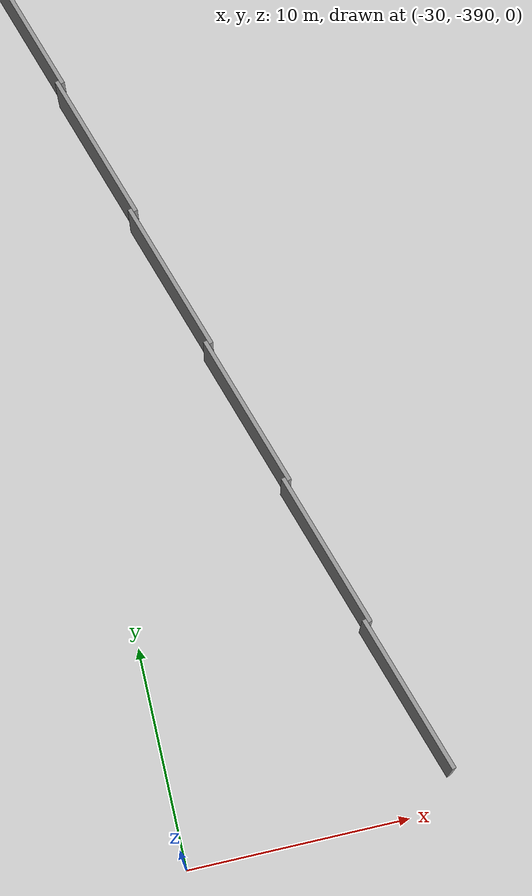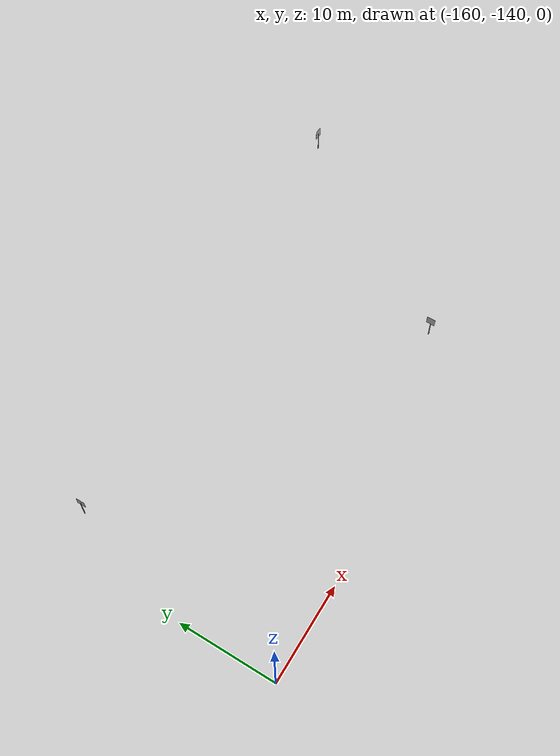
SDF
<sdf version="1.6">
 <world name="default">
  <light name="sun" type="directional">
   <pose>0 0 10 0 -0 0</pose>
   <diffuse>0.8 0.8 0.8 1</diffuse>
   <specular>0.2 0.2 0.2 1</specular>
   <attenuation>
    <range>1000</range>
    <constant>0.9</constant>
    <linear>0.01</linear>
    <quadratic>0.001</quadratic>
   </attenuation>
   <direction>-0.5 0.1 -0.9</direction>
  </light>
  <gravity>0 0 -9.8</gravity>
  <magnetic_field>6e-06 2.3e-05 -4.2e-05</magnetic_field>
  <atmosphere type="adiabatic"/>
  <physics name="default_physics" default="0" type="ode">
   <max_step_size>0.001</max_step_size>
   <real_time_factor>1</real_time_factor>
   <real_time_update_rate>1000</real_time_update_rate>
  </physics>
  <scene><ambient>0.4 0.4 0.4 1</ambient><background>0.7 0.7 0.7 1</background><shadows>1</shadows></scene>
  <audio><device>default</device></audio>
  <spherical_coordinates>
   <surface_model>EARTH_WGS84</surface_model>
   <latitude_deg>0</latitude_deg>
   <longitude_deg>0</longitude_deg>
   <elevation>0</elevation>
   <heading_deg>0</heading_deg>
  </spherical_coordinates>
  <model name="grey_wall">
   <static>1</static>
   <link name="link">
    <pose>0 0 1.4 0 -0 0</pose>
    <collision name="collision"><geometry><box><size>7.5 0.2 2.8</size></box></geometry></collision>
    <visual name="visual">
     <cast_shadows>0</cast_shadows>
     <geometry><box><size>7.5 0.2 2.8</size></box></geometry>
     <material>
      <script>
       <uri>model://grey_wall/materials/scripts</uri>
       <uri>model://grey_wall/materials/textures</uri>
       <name>vrc/grey_wall</name>
      </script>
     </material>
    </visual>
   </link>
   <pose>-29 -350 0 0 -0 1.87601</pose>
  </model>
  <model name="grey_wall_clone">
   <static>1</static>
   <link name="link">
    <pose>0 0 1.4 0 -0 0</pose>
    <collision name="collision"><geometry><box><size>7.5 0.2 2.8</size></box></geometry></collision>
    <visual name="visual">
     <cast_shadows>0</cast_shadows>
     <geometry><box><size>7.5 0.2 2.8</size></box></geometry>
     <material>
      <script>
       <uri>model://grey_wall/materials/scripts</uri>
       <uri>model://grey_wall/materials/textures</uri>
       <name>vrc/grey_wall</name>
      </script>
     </material>
    </visual>
   </link>
   <pose>-27 -357 0 0 -0 1.87601</pose>
  </model>
  <model name="grey_wall_clone_0">
   <static>1</static>
   <link name="link">
    <pose>0 0 1.4 0 -0 0</pose>
    <collision name="collision"><geometry><box><size>7.5 0.2 2.8</size></box></geometry></collision>
    <visual name="visual">
     <cast_shadows>0</cast_shadows>
     <geometry><box><size>7.5 0.2 2.8</size></box></geometry>
     <material>
      <script>
       <uri>model://grey_wall/materials/scripts</uri>
       <uri>model://grey_wall/materials/textures</uri>
       <name>vrc/grey_wall</name>
      </script>
     </material>
    </visual>
   </link>
   <pose>-25 -364 0 0 -0 1.87601</pose>
  </model>
  <model name="grey_wall_clone_0_clone">
   <static>1</static>
   <link name="link">
    <pose>0 0 1.4 0 -0 0</pose>
    <collision name="collision"><geometry><box><size>7.5 0.2 2.8</size></box></geometry></collision>
    <visual name="visual">
     <cast_shadows>0</cast_shadows>
     <geometry><box><size>7.5 0.2 2.8</size></box></geometry>
     <material>
      <script>
       <uri>model://grey_wall/materials/scripts</uri>
       <uri>model://grey_wall/materials/textures</uri>
       <name>vrc/grey_wall</name>
      </script>
     </material>
    </visual>
   </link>
   <pose>-23 -371 0 0 -0 1.87601</pose>
  </model>
  <model name="grey_wall_clone_0_clone_clone">
   <static>1</static>
   <link name="link">
    <pose>0 0 1.4 0 -0 0</pose>
    <collision name="collision"><geometry><box><size>7.5 0.2 2.8</size></box></geometry></collision>
    <visual name="visual">
     <cast_shadows>0</cast_shadows>
     <geometry><box><size>7.5 0.2 2.8</size></box></geometry>
     <material>
      <script>
       <uri>model://grey_wall/materials/scripts</uri>
       <uri>model://grey_wall/materials/textures</uri>
       <name>vrc/grey_wall</name>
      </script>
     </material>
    </visual>
   </link>
   <pose>-21 -378 0 0 -0 1.87601</pose>
  </model>
  <model name="grey_wall_clone_0_clone_clone_clone">
   <static>1</static>
   <link name="link">
    <pose>0 0 1.4 0 -0 0</pose>
    <collision name="collision"><geometry><box><size>7.5 0.2 2.8</size></box></geometry></collision>
    <visual name="visual">
     <cast_shadows>0</cast_shadows>
     <geometry><box><size>7.5 0.2 2.8</size></box></geometry>
     <material>
      <script>
       <uri>model://grey_wall/materials/scripts</uri>
       <uri>model://grey_wall/materials/textures</uri>
       <name>vrc/grey_wall</name>
      </script>
     </material>
    </visual>
   </link>
   <pose>-19 -385 0 0 -0 1.87601</pose>
  </model>
  <model name="stop">
   <static>1</static>
   <link name="link">
    <collision name="collision">
     <geometry><mesh><scale>1 1 1</scale><uri>model://stop/meshes/stop.dae</uri></mesh></geometry>
    </collision>
    <visual name="visual">
     <geometry><mesh><scale>1 1 1</scale><uri>model://stop/meshes/stop.dae</uri></mesh></geometry>
    </visual>
   </link>
   <pose>15.3575 -312.919 0 0 -0 0</pose>
  </model>
  <model name="right_turn_only">
   <static>1</static>
   <link name="link">
    <collision name="collision">
     <geometry>
      <mesh><scale>1 1 1</scale><uri>model://right_turn_only/meshes/right_turn_only.dae</uri></mesh>
     </geometry>
    </collision>
    <visual name="visual">
     <geometry>
      <mesh><scale>1 1 1</scale><uri>model://right_turn_only/meshes/right_turn_only.dae</uri></mesh>
     </geometry>
    </visual>
   </link>
   <pose>8.85113 -311.338 0 0 -0 0</pose>
  </model>
  <model name="left_turn_only">
   <static>1</static>
   <link name="link">
    <collision name="collision">
     <geometry>
      <mesh><scale>1 1 1</scale><uri>model://left_turn_only/meshes/left_turn_only.dae</uri></mesh>
     </geometry>
    </collision>
    <visual name="visual">
     <geometry>
      <mesh><scale>1 1 1</scale><uri>model://left_turn_only/meshes/left_turn_only.dae</uri></mesh>
     </geometry>
    </visual>
   </link>
   <pose>9.95826 -313.03 0 0 -0 0</pose>
  </model>
  <model name="right_turn_only_clone">
   <static>1</static>
   <link name="link">
    <collision name="collision">
     <geometry>
      <mesh><scale>1 1 1</scale><uri>model://right_turn_only/meshes/right_turn_only.dae</uri></mesh>
     </geometry>
    </collision>
    <visual name="visual">
     <geometry>
      <mesh><scale>1 1 1</scale><uri>model://right_turn_only/meshes/right_turn_only.dae</uri></mesh>
     </geometry>
    </visual>
   </link>
   <pose>-49.3964 -232.327 0 0 -0 0</pose>
  </model>
  <model name="right_turn_only_clone_1">
   <static>1</static>
   <link name="link">
    <collision name="collision">
     <geometry>
      <mesh><scale>1 1 1</scale><uri>model://right_turn_only/meshes/right_turn_only.dae</uri></mesh>
     </geometry>
    </collision>
    <visual name="visual">
     <geometry>
      <mesh><scale>1 1 1</scale><uri>model://right_turn_only/meshes/right_turn_only.dae</uri></mesh>
     </geometry>
    </visual>
   </link>
   <pose>13.1429 -136.452 0 0 -0 3.07373</pose>
  </model>
  <model name="left_turn_only_clone">
   <static>1</static>
   <link name="link">
    <collision name="collision">
     <geometry>
      <mesh><scale>1 1 1</scale><uri>model://left_turn_only/meshes/left_turn_only.dae</uri></mesh>
     </geometry>
    </collision>
    <visual name="visual">
     <geometry>
      <mesh><scale>1 1 1</scale><uri>model://left_turn_only/meshes/left_turn_only.dae</uri></mesh>
     </geometry>
    </visual>
   </link>
   <pose>-105.194 -111.726 0 0 -0 1.56016</pose>
  </model>
  <model name="right_turn_only_clone_2">
   <static>1</static>
   <link name="link">
    <collision name="collision">
     <geometry>
      <mesh><scale>1 1 1</scale><uri>model://right_turn_only/meshes/right_turn_only.dae</uri></mesh>
     </geometry>
    </collision>
    <visual name="visual">
     <geometry>
      <mesh><scale>1 1 1</scale><uri>model://right_turn_only/meshes/right_turn_only.dae</uri></mesh>
     </geometry>
    </visual>
   </link>
   <pose>-118.173 -19.9532 0 0 -0 3.13054</pose>
  </model>
  <model name="right_turn_only_clone_3">
   <static>1</static>
   <link name="link">
    <collision name="collision">
     <geometry>
      <mesh><scale>1 1 1</scale><uri>model://right_turn_only/meshes/right_turn_only.dae</uri></mesh>
     </geometry>
    </collision>
    <visual name="visual">
     <geometry>
      <mesh><scale>1 1 1</scale><uri>model://right_turn_only/meshes/right_turn_only.dae</uri></mesh>
     </geometry>
    </visual>
   </link>
   <pose>-71.0591 -23.7095 0 0 0 -1.70966</pose>
  </model>
  <model name="left_turn_only_clone_0">
   <static>1</static>
   <link name="link">
    <collision name="collision">
     <geometry>
      <mesh><scale>1 1 1</scale><uri>model://left_turn_only/meshes/left_turn_only.dae</uri></mesh>
     </geometry>
    </collision>
    <visual name="visual">
     <geometry>
      <mesh><scale>1 1 1</scale><uri>model://left_turn_only/meshes/left_turn_only.dae</uri></mesh>
     </geometry>
    </visual>
   </link>
   <pose>-177.298 -0.58583 0 0 -0 1.51381</pose>
  </model>
  <model name="right_turn_only_clone_4">
   <static>1</static>
   <link name="link">
    <collision name="collision">
     <geometry>
      <mesh><scale>1 1 1</scale><uri>model://right_turn_only/meshes/right_turn_only.dae</uri></mesh>
     </geometry>
    </collision>
    <visual name="visual">
     <geometry>
      <mesh><scale>1 1 1</scale><uri>model://right_turn_only/meshes/right_turn_only.dae</uri></mesh>
     </geometry>
    </visual>
   </link>
   <pose>28.8738 216.307 0 0 -0 1.57736</pose>
  </model>
  <model name="left_turn_only_clone_1">
   <static>1</static>
   <link name="link">
    <collision name="collision">
     <geometry>
      <mesh><scale>1 1 1</scale><uri>model://left_turn_only/meshes/left_turn_only.dae</uri></mesh>
     </geometry>
    </collision>
    <visual name="visual">
     <geometry>
      <mesh><scale>1 1 1</scale><uri>model://left_turn_only/meshes/left_turn_only.dae</uri></mesh>
     </geometry>
    </visual>
   </link>
   <pose>-116.673 7.19164 0 0 -0 3.05826</pose>
  </model>
  <model name="left_turn_only_clone_2">
   <static>1</static>
   <link name="link">
    <collision name="collision">
     <geometry>
      <mesh><scale>1 1 1</scale><uri>model://left_turn_only/meshes/left_turn_only.dae</uri></mesh>
     </geometry>
    </collision>
    <visual name="visual">
     <geometry>
      <mesh><scale>1 1 1</scale><uri>model://left_turn_only/meshes/left_turn_only.dae</uri></mesh>
     </geometry>
    </visual>
   </link>
   <pose>-53.3552 -1.06942 0 0 -0 0</pose>
  </model>
  <model name="left_turn_only_clone_3">
   <static>1</static>
   <link name="link">
    <collision name="collision">
     <geometry>
      <mesh><scale>1 1 1</scale><uri>model://left_turn_only/meshes/left_turn_only.dae</uri></mesh>
     </geometry>
    </collision>
    <visual name="visual">
     <geometry>
      <mesh><scale>1 1 1</scale><uri>model://left_turn_only/meshes/left_turn_only.dae</uri></mesh>
     </geometry>
    </visual>
   </link>
   <pose>71.6014 -19.9846 0 0 -0 0</pose>
  </model>
  <model name="right_turn_only_clone_clone">
   <static>1</static>
   <link name="link">
    <collision name="collision">
     <geometry>
      <mesh><scale>1 1 1</scale><uri>model://right_turn_only/meshes/right_turn_only.dae</uri></mesh>
     </geometry>
    </collision>
    <visual name="visual">
     <geometry>
      <mesh><scale>1 1 1</scale><uri>model://right_turn_only/meshes/right_turn_only.dae</uri></mesh>
     </geometry>
    </visual>
   </link>
   <pose>72.4478 23.7977 0 0 -0 0</pose>
  </model>
  <model name="stop_clone">
   <static>1</static>
   <link name="link">
    <collision name="collision">
     <geometry><mesh><scale>1 1 1</scale><uri>model://stop/meshes/stop.dae</uri></mesh></geometry>
    </collision>
    <visual name="visual">
     <geometry><mesh><scale>1 1 1</scale><uri>model://stop/meshes/stop.dae</uri></mesh></geometry>
    </visual>
   </link>
   <pose>131.173 317.298 0 0 0 -1.57863</pose>
  </model>
  <model name="stop_clone_0">
   <static>1</static>
   <link name="link">
    <collision name="collision">
     <geometry><mesh><scale>1 1 1</scale><uri>model://stop/meshes/stop.dae</uri></mesh></geometry>
    </collision>
    <visual name="visual">
     <geometry><mesh><scale>1 1 1</scale><uri>model://stop/meshes/stop.dae</uri></mesh></geometry>
    </visual>
   </link>
   <pose>142.626 23.6306 0 0 -0 0</pose>
  </model>
  <model name="stop_clone_1">
   <static>1</static>
   <link name="link">
    <collision name="collision">
     <geometry><mesh><scale>1 1 1</scale><uri>model://stop/meshes/stop.dae</uri></mesh></geometry>
    </collision>
    <visual name="visual">
     <geometry><mesh><scale>1 1 1</scale><uri>model://stop/meshes/stop.dae</uri></mesh></geometry>
    </visual>
   </link>
   <pose>94.2599 -314.743 0 0 -0 1.60627</pose>
  </model>
  <model name="stop_clone_4">
   <static>1</static>
   <link name="link">
    <collision name="collision">
     <geometry><mesh><scale>1 1 1</scale><uri>model://stop/meshes/stop.dae</uri></mesh></geometry>
    </collision>
    <visual name="visual">
     <geometry><mesh><scale>1 1 1</scale><uri>model://stop/meshes/stop.dae</uri></mesh></geometry>
    </visual>
   </link>
   <pose>217.695 -30.2795 0 0 0 -1.62504</pose>
  </model>
  <model name="right_turn_only_clone_0">
   <static>1</static>
   <link name="link">
    <collision name="collision">
     <geometry>
      <mesh><scale>1 1 1</scale><uri>model://right_turn_only/meshes/right_turn_only.dae</uri></mesh>
     </geometry>
    </collision>
    <visual name="visual">
     <geometry>
      <mesh><scale>1 1 1</scale><uri>model://right_turn_only/meshes/right_turn_only.dae</uri></mesh>
     </geometry>
    </visual>
   </link>
   <pose>-140.1 28.1404 0 0 -0 0</pose>
  </model>
  <model name="stop_clone_5">
   <static>1</static>
   <link name="link">
    <collision name="collision">
     <geometry><mesh><scale>1 1 1</scale><uri>model://stop/meshes/stop.dae</uri></mesh></geometry>
    </collision>
    <visual name="visual">
     <geometry><mesh><scale>1 1 1</scale><uri>model://stop/meshes/stop.dae</uri></mesh></geometry>
    </visual>
   </link>
   <pose>-156.088 -116.56 0 0 -0 0</pose>
  </model>
  <model name="stop_clone_6">
   <static>1</static>
   <link name="link">
    <collision name="collision">
     <geometry><mesh><scale>1 1 1</scale><uri>model://stop/meshes/stop.dae</uri></mesh></geometry>
    </collision>
    <visual name="visual">
     <geometry><mesh><scale>1 1 1</scale><uri>model://stop/meshes/stop.dae</uri></mesh></geometry>
    </visual>
   </link>
   <pose>-164.034 -361.03 0 0 -0 0.414646</pose>
  </model>
  <model name="stop_clone_7">
   <static>1</static>
   <link name="link">
    <collision name="collision">
     <geometry><mesh><scale>1 1 1</scale><uri>model://stop/meshes/stop.dae</uri></mesh></geometry>
    </collision>
    <visual name="visual">
     <geometry><mesh><scale>1 1 1</scale><uri>model://stop/meshes/stop.dae</uri></mesh></geometry>
    </visual>
   </link>
   <pose>147.806 -132.577 0 0 -0 0.637861</pose>
  </model>
  <model name="stop_clone_8">
   <static>1</static>
   <link name="link">
    <collision name="collision">
     <geometry><mesh><scale>1 1 1</scale><uri>model://stop/meshes/stop.dae</uri></mesh></geometry>
    </collision>
    <visual name="visual">
     <geometry><mesh><scale>1 1 1</scale><uri>model://stop/meshes/stop.dae</uri></mesh></geometry>
    </visual>
   </link>
   <pose>57.6121 153.536 0 0 -0 0.398427</pose>
  </model>
  <model name="stop_clone_9">
   <static>1</static>
   <link name="link">
    <collision name="collision">
     <geometry><mesh><scale>1 1 1</scale><uri>model://stop/meshes/stop.dae</uri></mesh></geometry>
    </collision>
    <visual name="visual">
     <geometry><mesh><scale>1 1 1</scale><uri>model://stop/meshes/stop.dae</uri></mesh></geometry>
    </visual>
   </link>
   <pose>55.6974 214.71 0 0 -0 0</pose>
  </model>
  <model name="stop_clone_2">
   <static>1</static>
   <link name="link">
    <collision name="collision">
     <geometry><mesh><scale>1 1 1</scale><uri>model://stop/meshes/stop.dae</uri></mesh></geometry>
    </collision>
    <visual name="visual">
     <geometry><mesh><scale>1 1 1</scale><uri>model://stop/meshes/stop.dae</uri></mesh></geometry>
    </visual>
   </link>
   <pose>-121.558 -134.72 0 0 -0 3.09551</pose>
  </model>
 </world>
</sdf>
